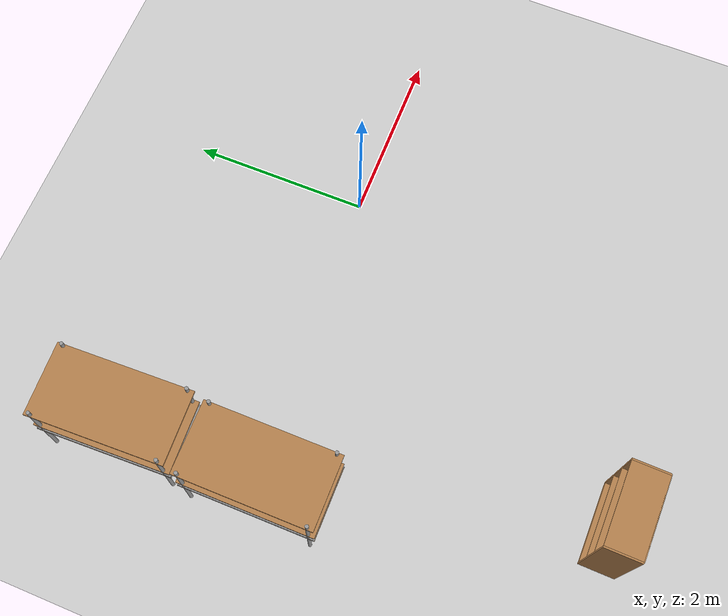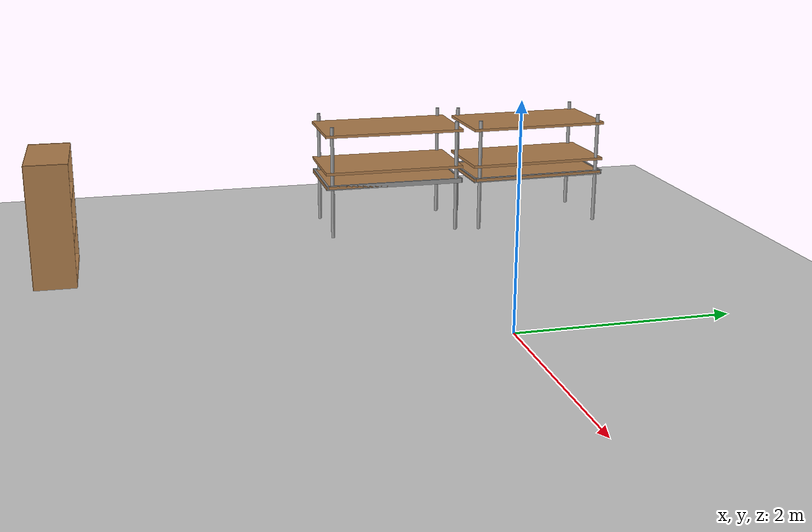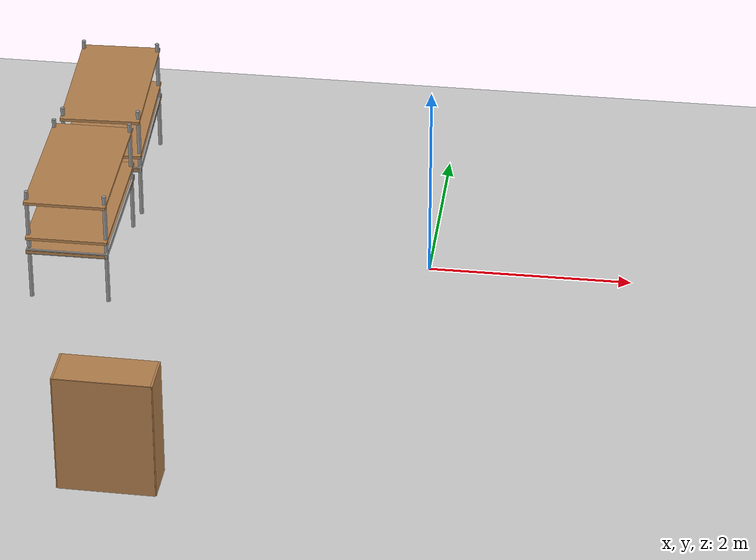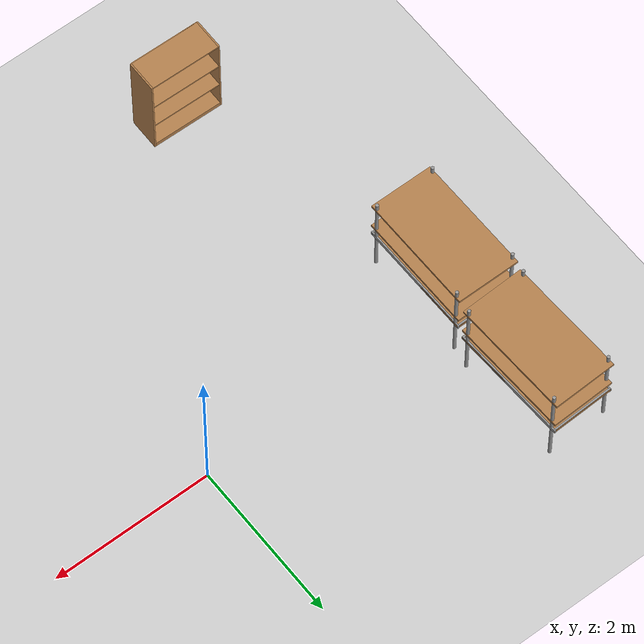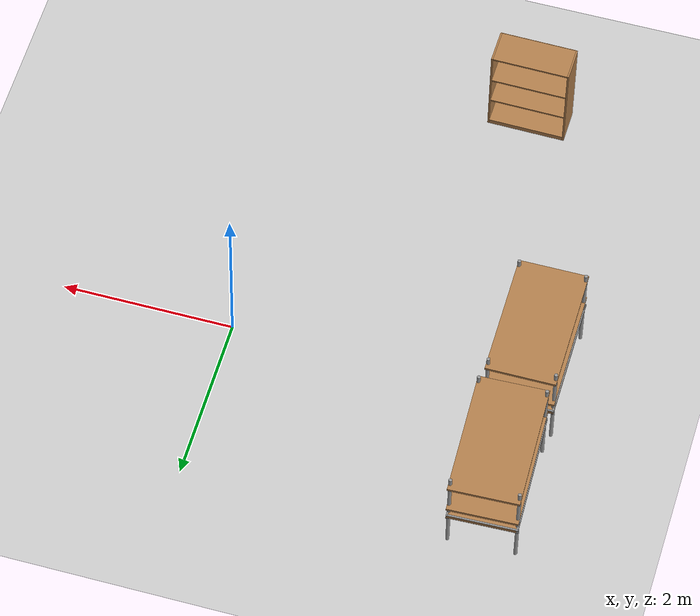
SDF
<sdf version="1.7">
 <world name="default">
  <model name="ground_plane">
   <static>1</static>
   <link name="link">
    <collision name="collision">
     <geometry><plane><normal>0 0 1</normal><size>100 100</size></plane></geometry>
     <surface><friction><ode><mu>100</mu><mu2>50</mu2></ode></friction></surface>
    </collision>
    <visual name="visual">
     <cast_shadows>0</cast_shadows>
     <geometry><plane><normal>0 0 1</normal><size>100 100</size></plane></geometry>
     <material>
      <script><uri>file://media/materials/scripts/gazebo.material</uri><name>Gazebo/Grey</name></script>
     </material>
    </visual>
   </link>
  </model>
  <model name="warehouse_pallet">
   <link name="warehouse_pallet::link">
    <pose>0 0 -0 0 -0 1.57</pose>
    <inertial>
     <inertia>
      <ixx>0.0267042</ixx>
      <ixy>0</ixy>
      <ixz>0</ixz>
      <iyy>0.0937875</iyy>
      <iyz>0</iyz>
      <izz>0.120417</izz>
     </inertia>
     <mass>0.5</mass>
    </inertial>
    <visual name="holding1_visual">
     <pose>0 0.39 0.45 0 -0 0</pose>
     <geometry><box><size>1.5 0.02 0.05</size></box></geometry>
     <material>
      <script><uri>file://media/materials/scripts/gazebo.material</uri><name>Gazebo/Grey</name></script>
      <shader type="pixel"><normal_map>__default__</normal_map></shader>
      <ambient>0.3 0.3 0.3 1</ambient>
      <diffuse>0.7 0.7 0.7 1</diffuse>
      <specular>0.01 0.01 0.01 1</specular>
      <emissive>0 0 0 1</emissive>
     </material>
    </visual>
    <visual name="front_left_leg">
     <pose>0.68 0.38 0.5 0 -0 0</pose>
     <geometry><cylinder><radius>0.02</radius><length>1.2</length></cylinder></geometry>
     <material>
      <script><uri>file://media/materials/scripts/gazebo.material</uri><name>Gazebo/Grey</name></script>
      <shader type="pixel"><normal_map>__default__</normal_map></shader>
      <ambient>0.3 0.3 0.3 1</ambient>
      <diffuse>0.7 0.7 0.7 1</diffuse>
      <specular>0.01 0.01 0.01 1</specular>
      <emissive>0 0 0 1</emissive>
     </material>
    </visual>
    <visual name="front_right_leg">
     <pose>0.68 -0.38 0.5 0 -0 0</pose>
     <geometry><cylinder><radius>0.02</radius><length>1.2</length></cylinder></geometry>
     <material>
      <script><uri>file://media/materials/scripts/gazebo.material</uri><name>Gazebo/Grey</name></script>
      <shader type="pixel"><normal_map>__default__</normal_map></shader>
      <ambient>0.3 0.3 0.3 1</ambient>
      <diffuse>0.7 0.7 0.7 1</diffuse>
      <specular>0.01 0.01 0.01 1</specular>
      <emissive>0 0 0 1</emissive>
     </material>
    </visual>
    <visual name="back_right_leg">
     <pose>-0.68 -0.38 0.5 0 -0 0</pose>
     <geometry><cylinder><radius>0.02</radius><length>1.2</length></cylinder></geometry>
     <material>
      <script><uri>file://media/materials/scripts/gazebo.material</uri><name>Gazebo/Grey</name></script>
      <shader type="pixel"><normal_map>__default__</normal_map></shader>
      <ambient>0.3 0.3 0.3 1</ambient>
      <diffuse>0.7 0.7 0.7 1</diffuse>
      <specular>0.01 0.01 0.01 1</specular>
      <emissive>0 0 0 1</emissive>
     </material>
    </visual>
    <visual name="back_left_leg">
     <pose>-0.68 0.38 0.5 0 -0 0</pose>
     <geometry><cylinder><radius>0.02</radius><length>1.2</length></cylinder></geometry>
     <material>
      <script><uri>file://media/materials/scripts/gazebo.material</uri><name>Gazebo/Grey</name></script>
      <shader type="pixel"><normal_map>__default__</normal_map></shader>
      <ambient>0.3 0.3 0.3 1</ambient>
      <diffuse>0.7 0.7 0.7 1</diffuse>
      <specular>0.01 0.01 0.01 1</specular>
      <emissive>0 0 0 1</emissive>
     </material>
    </visual>
    <visual name="visual1">
     <pose>0 0 0.45 0 -0 0</pose>
     <geometry><box><size>1.5 0.8 0.03</size></box></geometry>
     <material>
      <script><uri>file://media/materials/scripts/gazebo.material</uri><name>Gazebo/Wood</name></script>
      <shader type="pixel"><normal_map>__default__</normal_map></shader>
      <ambient>1 1 1 1</ambient>
      <diffuse>1 1 1 1</diffuse>
      <specular>0.2 0.2 0.2 1</specular>
      <emissive>0 0 0 1</emissive>
     </material>
    </visual>
    <visual name="holding2_visual">
     <pose>0 -0.39 0.45 0 -0 0</pose>
     <geometry><box><size>1.5 0.02 0.05</size></box></geometry>
     <material>
      <script><uri>file://media/materials/scripts/gazebo.material</uri><name>Gazebo/Grey</name></script>
      <shader type="pixel"><normal_map>__default__</normal_map></shader>
      <ambient>0.3 0.3 0.3 1</ambient>
      <diffuse>0.7 0.7 0.7 1</diffuse>
      <specular>0.01 0.01 0.01 1</specular>
      <emissive>0 0 0 1</emissive>
     </material>
    </visual>
    <visual name="holding3_visual">
     <pose>0.735 0 0.45 0 -0 1.57</pose>
     <geometry><box><size>0.8 0.02 0.05</size></box></geometry>
     <material>
      <script><uri>file://media/materials/scripts/gazebo.material</uri><name>Gazebo/Grey</name></script>
      <shader type="pixel"><normal_map>__default__</normal_map></shader>
      <ambient>0.3 0.3 0.3 1</ambient>
      <diffuse>0.7 0.7 0.7 1</diffuse>
      <specular>0.01 0.01 0.01 1</specular>
      <emissive>0 0 0 1</emissive>
     </material>
    </visual>
    <visual name="holding4_visual">
     <pose>-0.735 0 0.45 0 -0 1.57</pose>
     <geometry><box><size>0.8 0.02 0.05</size></box></geometry>
     <material>
      <script><uri>file://media/materials/scripts/gazebo.material</uri><name>Gazebo/Grey</name></script>
      <shader type="pixel"><normal_map>__default__</normal_map></shader>
      <ambient>0.3 0.3 0.3 1</ambient>
      <diffuse>0.7 0.7 0.7 1</diffuse>
      <specular>0.01 0.01 0.01 1</specular>
      <emissive>0 0 0 1</emissive>
     </material>
    </visual>
    <visual name="visual2">
     <pose>0 0 0.6 0 -0 0</pose>
     <geometry><box><size>1.5 0.8 0.03</size></box></geometry>
     <material>
      <script><uri>file://media/materials/scripts/gazebo.material</uri><name>Gazebo/Wood</name></script>
      <shader type="pixel"><normal_map>__default__</normal_map></shader>
      <ambient>1 1 1 1</ambient>
      <diffuse>1 1 1 1</diffuse>
      <specular>0.2 0.2 0.2 1</specular>
      <emissive>0 0 0 1</emissive>
     </material>
    </visual>
    <visual name="visual3">
     <pose>0 0 1 0 -0 0</pose>
     <geometry><box><size>1.5 0.8 0.03</size></box></geometry>
     <material>
      <script><uri>file://media/materials/scripts/gazebo.material</uri><name>Gazebo/Wood</name></script>
      <shader type="pixel"><normal_map>__default__</normal_map></shader>
      <ambient>1 1 1 1</ambient>
      <diffuse>1 1 1 1</diffuse>
      <specular>0.2 0.2 0.2 1</specular>
      <emissive>0 0 0 1</emissive>
     </material>
    </visual>
    <collision name="surface1">
     <pose>0 0 0.45 0 -0 0</pose>
     <geometry><box><size>1.5 0.8 0.03</size></box></geometry>
     <surface>
      <friction>
       <ode><mu>20</mu><mu2>20</mu2><fdir1>0 0 0</fdir1><slip1>0</slip1><slip2>0</slip2></ode>
       <torsional>
        <coefficient>1</coefficient>
        <patch_radius>0</patch_radius>
        <surface_radius>0</surface_radius>
        <use_patch_radius>1</use_patch_radius>
        <ode><slip>0</slip></ode>
       </torsional>
      </friction>
      <bounce><restitution_coefficient>0</restitution_coefficient><threshold>1e+06</threshold></bounce>
      <contact>
       <collide_without_contact>0</collide_without_contact>
       <collide_without_contact_bitmask>1</collide_without_contact_bitmask>
       <collide_bitmask>1</collide_bitmask>
       <ode>
        <soft_cfm>0</soft_cfm>
        <soft_erp>0.2</soft_erp>
        <kp>1e+13</kp>
        <kd>1</kd>
        <max_vel>0.01</max_vel>
        <min_depth>0</min_depth>
       </ode>
       <bullet>
        <split_impulse>1</split_impulse>
        <split_impulse_penetration_threshold>-0.01</split_impulse_penetration_threshold>
        <soft_cfm>0</soft_cfm>
        <soft_erp>0.2</soft_erp>
        <kp>1e+13</kp>
        <kd>1</kd>
       </bullet>
      </contact>
     </surface>
    </collision>
    <collision name="holding1_collision">
     <pose>0 0.39 0.45 0 -0 0</pose>
     <geometry><box><size>1.5 0.02 0.05</size></box></geometry>
     <surface>
      <friction>
       <ode><mu>1e+09</mu><mu2>1e+09</mu2><fdir1>0 0 0</fdir1><slip1>0</slip1><slip2>0</slip2></ode>
       <torsional>
        <coefficient>1</coefficient>
        <patch_radius>0</patch_radius>
        <surface_radius>0</surface_radius>
        <use_patch_radius>1</use_patch_radius>
        <ode><slip>0</slip></ode>
       </torsional>
      </friction>
      <bounce><restitution_coefficient>0</restitution_coefficient><threshold>1e+06</threshold></bounce>
      <contact>
       <collide_without_contact>0</collide_without_contact>
       <collide_without_contact_bitmask>1</collide_without_contact_bitmask>
       <collide_bitmask>1</collide_bitmask>
       <ode>
        <soft_cfm>0</soft_cfm>
        <soft_erp>0.2</soft_erp>
        <kp>1e+13</kp>
        <kd>1</kd>
        <max_vel>0.01</max_vel>
        <min_depth>0</min_depth>
       </ode>
       <bullet>
        <split_impulse>1</split_impulse>
        <split_impulse_penetration_threshold>-0.01</split_impulse_penetration_threshold>
        <soft_cfm>0</soft_cfm>
        <soft_erp>0.2</soft_erp>
        <kp>1e+13</kp>
        <kd>1</kd>
       </bullet>
      </contact>
     </surface>
    </collision>
    <collision name="holding2_collision">
     <pose>0 -0.39 0.45 0 -0 0</pose>
     <geometry><box><size>1.5 0.02 0.05</size></box></geometry>
     <surface>
      <friction>
       <ode><mu>1e+09</mu><mu2>1e+09</mu2><fdir1>0 0 0</fdir1><slip1>0</slip1><slip2>0</slip2></ode>
       <torsional>
        <coefficient>1</coefficient>
        <patch_radius>0</patch_radius>
        <surface_radius>0</surface_radius>
        <use_patch_radius>1</use_patch_radius>
        <ode><slip>0</slip></ode>
       </torsional>
      </friction>
      <bounce><restitution_coefficient>0</restitution_coefficient><threshold>1e+06</threshold></bounce>
      <contact>
       <collide_without_contact>0</collide_without_contact>
       <collide_without_contact_bitmask>1</collide_without_contact_bitmask>
       <collide_bitmask>1</collide_bitmask>
       <ode>
        <soft_cfm>0</soft_cfm>
        <soft_erp>0.2</soft_erp>
        <kp>1e+13</kp>
        <kd>1</kd>
        <max_vel>0.01</max_vel>
        <min_depth>0</min_depth>
       </ode>
       <bullet>
        <split_impulse>1</split_impulse>
        <split_impulse_penetration_threshold>-0.01</split_impulse_penetration_threshold>
        <soft_cfm>0</soft_cfm>
        <soft_erp>0.2</soft_erp>
        <kp>1e+13</kp>
        <kd>1</kd>
       </bullet>
      </contact>
     </surface>
    </collision>
    <collision name="holding3_collision">
     <pose>0.735 0 0.45 0 -0 1.57</pose>
     <geometry><box><size>0.8 0.02 0.05</size></box></geometry>
     <surface>
      <friction>
       <ode><mu>1e+09</mu><mu2>1e+09</mu2><fdir1>0 0 0</fdir1><slip1>0</slip1><slip2>0</slip2></ode>
       <torsional>
        <coefficient>1</coefficient>
        <patch_radius>0</patch_radius>
        <surface_radius>0</surface_radius>
        <use_patch_radius>1</use_patch_radius>
        <ode><slip>0</slip></ode>
       </torsional>
      </friction>
      <bounce><restitution_coefficient>0</restitution_coefficient><threshold>1e+06</threshold></bounce>
      <contact>
       <collide_without_contact>0</collide_without_contact>
       <collide_without_contact_bitmask>1</collide_without_contact_bitmask>
       <collide_bitmask>1</collide_bitmask>
       <ode>
        <soft_cfm>0</soft_cfm>
        <soft_erp>0.2</soft_erp>
        <kp>1e+13</kp>
        <kd>1</kd>
        <max_vel>0.01</max_vel>
        <min_depth>0</min_depth>
       </ode>
       <bullet>
        <split_impulse>1</split_impulse>
        <split_impulse_penetration_threshold>-0.01</split_impulse_penetration_threshold>
        <soft_cfm>0</soft_cfm>
        <soft_erp>0.2</soft_erp>
        <kp>1e+13</kp>
        <kd>1</kd>
       </bullet>
      </contact>
     </surface>
    </collision>
    <collision name="holding4_collision">
     <pose>-0.735 0 0.45 0 -0 1.57</pose>
     <geometry><box><size>0.8 0.02 0.05</size></box></geometry>
     <surface>
      <friction>
       <ode><mu>1e+09</mu><mu2>1e+09</mu2><fdir1>0 0 0</fdir1><slip1>0</slip1><slip2>0</slip2></ode>
       <torsional>
        <coefficient>1</coefficient>
        <patch_radius>0</patch_radius>
        <surface_radius>0</surface_radius>
        <use_patch_radius>1</use_patch_radius>
        <ode><slip>0</slip></ode>
       </torsional>
      </friction>
      <bounce><restitution_coefficient>0</restitution_coefficient><threshold>1e+06</threshold></bounce>
      <contact>
       <collide_without_contact>0</collide_without_contact>
       <collide_without_contact_bitmask>1</collide_without_contact_bitmask>
       <collide_bitmask>1</collide_bitmask>
       <ode>
        <soft_cfm>0</soft_cfm>
        <soft_erp>0.2</soft_erp>
        <kp>1e+13</kp>
        <kd>1</kd>
        <max_vel>0.01</max_vel>
        <min_depth>0</min_depth>
       </ode>
       <bullet>
        <split_impulse>1</split_impulse>
        <split_impulse_penetration_threshold>-0.01</split_impulse_penetration_threshold>
        <soft_cfm>0</soft_cfm>
        <soft_erp>0.2</soft_erp>
        <kp>1e+13</kp>
        <kd>1</kd>
       </bullet>
      </contact>
     </surface>
    </collision>
    <collision name="surface3">
     <pose>0 0 1 0 -0 0</pose>
     <geometry><box><size>1.5 0.8 0.03</size></box></geometry>
     <surface>
      <friction>
       <ode><mu>2.5</mu><mu2>2.5</mu2><fdir1>0 0 0</fdir1><slip1>0</slip1><slip2>0</slip2></ode>
       <torsional>
        <coefficient>1</coefficient>
        <patch_radius>0</patch_radius>
        <surface_radius>0</surface_radius>
        <use_patch_radius>1</use_patch_radius>
        <ode><slip>0</slip></ode>
       </torsional>
      </friction>
      <bounce><restitution_coefficient>0</restitution_coefficient><threshold>1e+06</threshold></bounce>
      <contact>
       <collide_without_contact>0</collide_without_contact>
       <collide_without_contact_bitmask>1</collide_without_contact_bitmask>
       <collide_bitmask>1</collide_bitmask>
       <ode>
        <soft_cfm>0</soft_cfm>
        <soft_erp>0.2</soft_erp>
        <kp>1e+13</kp>
        <kd>1</kd>
        <max_vel>0.01</max_vel>
        <min_depth>0</min_depth>
       </ode>
       <bullet>
        <split_impulse>1</split_impulse>
        <split_impulse_penetration_threshold>-0.01</split_impulse_penetration_threshold>
        <soft_cfm>0</soft_cfm>
        <soft_erp>0.2</soft_erp>
        <kp>1e+13</kp>
        <kd>1</kd>
       </bullet>
      </contact>
     </surface>
    </collision>
    <collision name="surface2">
     <pose>0 0 0.6 0 -0 0</pose>
     <geometry><box><size>1.5 0.8 0.03</size></box></geometry>
     <surface>
      <friction>
       <ode><mu>2.5</mu><mu2>2.5</mu2><fdir1>0 0 0</fdir1><slip1>0</slip1><slip2>0</slip2></ode>
       <torsional>
        <coefficient>1</coefficient>
        <patch_radius>0</patch_radius>
        <surface_radius>0</surface_radius>
        <use_patch_radius>1</use_patch_radius>
        <ode><slip>0</slip></ode>
       </torsional>
      </friction>
      <bounce><restitution_coefficient>0</restitution_coefficient><threshold>1e+06</threshold></bounce>
      <contact>
       <collide_without_contact>0</collide_without_contact>
       <collide_without_contact_bitmask>1</collide_without_contact_bitmask>
       <collide_bitmask>1</collide_bitmask>
       <ode>
        <soft_cfm>0</soft_cfm>
        <soft_erp>0.2</soft_erp>
        <kp>1e+13</kp>
        <kd>1</kd>
        <max_vel>0.01</max_vel>
        <min_depth>0</min_depth>
       </ode>
       <bullet>
        <split_impulse>1</split_impulse>
        <split_impulse_penetration_threshold>-0.01</split_impulse_penetration_threshold>
        <soft_cfm>0</soft_cfm>
        <soft_erp>0.2</soft_erp>
        <kp>1e+13</kp>
        <kd>1</kd>
       </bullet>
      </contact>
     </surface>
    </collision>
    <collision name="front_right_leg">
     <pose>0.68 -0.38 0.5 0 -0 0</pose>
     <geometry><cylinder><radius>0.02</radius><length>1</length></cylinder></geometry>
     <surface>
      <friction>
       <ode><mu>1</mu><mu2>1.2</mu2><fdir1>0 0 0</fdir1><slip1>0</slip1><slip2>0</slip2></ode>
       <torsional>
        <coefficient>1</coefficient>
        <patch_radius>0</patch_radius>
        <surface_radius>0</surface_radius>
        <use_patch_radius>1</use_patch_radius>
        <ode><slip>0</slip></ode>
       </torsional>
      </friction>
      <bounce><restitution_coefficient>0</restitution_coefficient><threshold>1e+06</threshold></bounce>
      <contact>
       <collide_without_contact>0</collide_without_contact>
       <collide_without_contact_bitmask>1</collide_without_contact_bitmask>
       <collide_bitmask>1</collide_bitmask>
       <ode>
        <soft_cfm>0</soft_cfm>
        <soft_erp>0.2</soft_erp>
        <kp>1e+13</kp>
        <kd>1</kd>
        <max_vel>0.01</max_vel>
        <min_depth>0</min_depth>
       </ode>
       <bullet>
        <split_impulse>1</split_impulse>
        <split_impulse_penetration_threshold>-0.01</split_impulse_penetration_threshold>
        <soft_cfm>0</soft_cfm>
        <soft_erp>0.2</soft_erp>
        <kp>1e+13</kp>
        <kd>1</kd>
       </bullet>
      </contact>
     </surface>
    </collision>
    <collision name="back_right_leg">
     <pose>-0.68 -0.38 0.5 0 -0 0</pose>
     <geometry><cylinder><radius>0.02</radius><length>1.2</length></cylinder></geometry>
     <surface>
      <friction>
       <ode><mu>1</mu><mu2>1</mu2><fdir1>0 0 0</fdir1><slip1>0</slip1><slip2>0</slip2></ode>
       <torsional>
        <coefficient>1</coefficient>
        <patch_radius>0</patch_radius>
        <surface_radius>0</surface_radius>
        <use_patch_radius>1</use_patch_radius>
        <ode><slip>0</slip></ode>
       </torsional>
      </friction>
      <bounce><restitution_coefficient>0</restitution_coefficient><threshold>1e+06</threshold></bounce>
      <contact>
       <collide_without_contact>0</collide_without_contact>
       <collide_without_contact_bitmask>1</collide_without_contact_bitmask>
       <collide_bitmask>1</collide_bitmask>
       <ode>
        <soft_cfm>0</soft_cfm>
        <soft_erp>0.2</soft_erp>
        <kp>1e+13</kp>
        <kd>1</kd>
        <max_vel>0.01</max_vel>
        <min_depth>0</min_depth>
       </ode>
       <bullet>
        <split_impulse>1</split_impulse>
        <split_impulse_penetration_threshold>-0.01</split_impulse_penetration_threshold>
        <soft_cfm>0</soft_cfm>
        <soft_erp>0.2</soft_erp>
        <kp>1e+13</kp>
        <kd>1</kd>
       </bullet>
      </contact>
     </surface>
    </collision>
    <collision name="front_left_leg">
     <pose>0.68 0.38 0.5 0 -0 0</pose>
     <geometry><cylinder><radius>0.02</radius><length>1.2</length></cylinder></geometry>
     <surface>
      <friction>
       <ode><mu>1</mu><mu2>1</mu2><fdir1>0 0 0</fdir1><slip1>0</slip1><slip2>0</slip2></ode>
       <torsional>
        <coefficient>1</coefficient>
        <patch_radius>0</patch_radius>
        <surface_radius>0</surface_radius>
        <use_patch_radius>1</use_patch_radius>
        <ode><slip>0</slip></ode>
       </torsional>
      </friction>
      <bounce><restitution_coefficient>0</restitution_coefficient><threshold>1e+06</threshold></bounce>
      <contact>
       <collide_without_contact>0</collide_without_contact>
       <collide_without_contact_bitmask>1</collide_without_contact_bitmask>
       <collide_bitmask>1</collide_bitmask>
       <ode>
        <soft_cfm>0</soft_cfm>
        <soft_erp>0.2</soft_erp>
        <kp>1e+13</kp>
        <kd>1</kd>
        <max_vel>0.01</max_vel>
        <min_depth>0</min_depth>
       </ode>
       <bullet>
        <split_impulse>1</split_impulse>
        <split_impulse_penetration_threshold>-0.01</split_impulse_penetration_threshold>
        <soft_cfm>0</soft_cfm>
        <soft_erp>0.2</soft_erp>
        <kp>1e+13</kp>
        <kd>1</kd>
       </bullet>
      </contact>
     </surface>
    </collision>
    <collision name="back_left_leg">
     <pose>-0.68 0.38 0.5 0 -0 0</pose>
     <geometry><cylinder><radius>0.02</radius><length>1.2</length></cylinder></geometry>
     <surface>
      <friction>
       <ode><mu>1</mu><mu2>1</mu2><fdir1>0 0 0</fdir1><slip1>0</slip1><slip2>0</slip2></ode>
       <torsional>
        <coefficient>1</coefficient>
        <patch_radius>0</patch_radius>
        <surface_radius>0</surface_radius>
        <use_patch_radius>1</use_patch_radius>
        <ode><slip>0</slip></ode>
       </torsional>
      </friction>
      <bounce><restitution_coefficient>0</restitution_coefficient><threshold>1e+06</threshold></bounce>
      <contact>
       <collide_without_contact>0</collide_without_contact>
       <collide_without_contact_bitmask>1</collide_without_contact_bitmask>
       <collide_bitmask>1</collide_bitmask>
       <ode>
        <soft_cfm>0</soft_cfm>
        <soft_erp>0.2</soft_erp>
        <kp>1e+13</kp>
        <kd>1</kd>
        <max_vel>0.01</max_vel>
        <min_depth>0</min_depth>
       </ode>
       <bullet>
        <split_impulse>1</split_impulse>
        <split_impulse_penetration_threshold>-0.01</split_impulse_penetration_threshold>
        <soft_cfm>0</soft_cfm>
        <soft_erp>0.2</soft_erp>
        <kp>1e+13</kp>
        <kd>1</kd>
       </bullet>
      </contact>
     </surface>
    </collision>
   </link>
   <static>0</static>
   <pose>-3.42613 -0.286099 0.099991 -7e-06 1.4e-05 0.003434</pose>
  </model>
  <model name="warehouse_pallet_clone">
   <link name="warehouse_pallet::link">
    <pose>0 0 -0 0 -0 1.57</pose>
    <inertial>
     <inertia>
      <ixx>0.0267042</ixx>
      <ixy>0</ixy>
      <ixz>0</ixz>
      <iyy>0.0937875</iyy>
      <iyz>0</iyz>
      <izz>0.120417</izz>
     </inertia>
     <mass>0.5</mass>
    </inertial>
    <visual name="holding1_visual">
     <pose>0 0.39 0.45 0 -0 0</pose>
     <geometry><box><size>1.5 0.02 0.05</size></box></geometry>
     <material>
      <script><uri>file://media/materials/scripts/gazebo.material</uri><name>Gazebo/Grey</name></script>
      <shader type="pixel"><normal_map>__default__</normal_map></shader>
      <ambient>0.3 0.3 0.3 1</ambient>
      <diffuse>0.7 0.7 0.7 1</diffuse>
      <specular>0.01 0.01 0.01 1</specular>
      <emissive>0 0 0 1</emissive>
     </material>
    </visual>
    <visual name="front_left_leg">
     <pose>0.68 0.38 0.5 0 -0 0</pose>
     <geometry><cylinder><radius>0.02</radius><length>1.2</length></cylinder></geometry>
     <material>
      <script><uri>file://media/materials/scripts/gazebo.material</uri><name>Gazebo/Grey</name></script>
      <shader type="pixel"><normal_map>__default__</normal_map></shader>
      <ambient>0.3 0.3 0.3 1</ambient>
      <diffuse>0.7 0.7 0.7 1</diffuse>
      <specular>0.01 0.01 0.01 1</specular>
      <emissive>0 0 0 1</emissive>
     </material>
    </visual>
    <visual name="front_right_leg">
     <pose>0.68 -0.38 0.5 0 -0 0</pose>
     <geometry><cylinder><radius>0.02</radius><length>1.2</length></cylinder></geometry>
     <material>
      <script><uri>file://media/materials/scripts/gazebo.material</uri><name>Gazebo/Grey</name></script>
      <shader type="pixel"><normal_map>__default__</normal_map></shader>
      <ambient>0.3 0.3 0.3 1</ambient>
      <diffuse>0.7 0.7 0.7 1</diffuse>
      <specular>0.01 0.01 0.01 1</specular>
      <emissive>0 0 0 1</emissive>
     </material>
    </visual>
    <visual name="back_right_leg">
     <pose>-0.68 -0.38 0.5 0 -0 0</pose>
     <geometry><cylinder><radius>0.02</radius><length>1.2</length></cylinder></geometry>
     <material>
      <script><uri>file://media/materials/scripts/gazebo.material</uri><name>Gazebo/Grey</name></script>
      <shader type="pixel"><normal_map>__default__</normal_map></shader>
      <ambient>0.3 0.3 0.3 1</ambient>
      <diffuse>0.7 0.7 0.7 1</diffuse>
      <specular>0.01 0.01 0.01 1</specular>
      <emissive>0 0 0 1</emissive>
     </material>
    </visual>
    <visual name="back_left_leg">
     <pose>-0.68 0.38 0.5 0 -0 0</pose>
     <geometry><cylinder><radius>0.02</radius><length>1.2</length></cylinder></geometry>
     <material>
      <script><uri>file://media/materials/scripts/gazebo.material</uri><name>Gazebo/Grey</name></script>
      <shader type="pixel"><normal_map>__default__</normal_map></shader>
      <ambient>0.3 0.3 0.3 1</ambient>
      <diffuse>0.7 0.7 0.7 1</diffuse>
      <specular>0.01 0.01 0.01 1</specular>
      <emissive>0 0 0 1</emissive>
     </material>
    </visual>
    <visual name="visual1">
     <pose>0 0 0.45 0 -0 0</pose>
     <geometry><box><size>1.5 0.8 0.03</size></box></geometry>
     <material>
      <script><uri>file://media/materials/scripts/gazebo.material</uri><name>Gazebo/Wood</name></script>
      <shader type="pixel"><normal_map>__default__</normal_map></shader>
      <ambient>1 1 1 1</ambient>
      <diffuse>1 1 1 1</diffuse>
      <specular>0.2 0.2 0.2 1</specular>
      <emissive>0 0 0 1</emissive>
     </material>
    </visual>
    <visual name="holding2_visual">
     <pose>0 -0.39 0.45 0 -0 0</pose>
     <geometry><box><size>1.5 0.02 0.05</size></box></geometry>
     <material>
      <script><uri>file://media/materials/scripts/gazebo.material</uri><name>Gazebo/Grey</name></script>
      <shader type="pixel"><normal_map>__default__</normal_map></shader>
      <ambient>0.3 0.3 0.3 1</ambient>
      <diffuse>0.7 0.7 0.7 1</diffuse>
      <specular>0.01 0.01 0.01 1</specular>
      <emissive>0 0 0 1</emissive>
     </material>
    </visual>
    <visual name="holding3_visual">
     <pose>0.735 0 0.45 0 -0 1.57</pose>
     <geometry><box><size>0.8 0.02 0.05</size></box></geometry>
     <material>
      <script><uri>file://media/materials/scripts/gazebo.material</uri><name>Gazebo/Grey</name></script>
      <shader type="pixel"><normal_map>__default__</normal_map></shader>
      <ambient>0.3 0.3 0.3 1</ambient>
      <diffuse>0.7 0.7 0.7 1</diffuse>
      <specular>0.01 0.01 0.01 1</specular>
      <emissive>0 0 0 1</emissive>
     </material>
    </visual>
    <visual name="holding4_visual">
     <pose>-0.735 0 0.45 0 -0 1.57</pose>
     <geometry><box><size>0.8 0.02 0.05</size></box></geometry>
     <material>
      <script><uri>file://media/materials/scripts/gazebo.material</uri><name>Gazebo/Grey</name></script>
      <shader type="pixel"><normal_map>__default__</normal_map></shader>
      <ambient>0.3 0.3 0.3 1</ambient>
      <diffuse>0.7 0.7 0.7 1</diffuse>
      <specular>0.01 0.01 0.01 1</specular>
      <emissive>0 0 0 1</emissive>
     </material>
    </visual>
    <visual name="visual2">
     <pose>0 0 0.6 0 -0 0</pose>
     <geometry><box><size>1.5 0.8 0.03</size></box></geometry>
     <material>
      <script><uri>file://media/materials/scripts/gazebo.material</uri><name>Gazebo/Wood</name></script>
      <shader type="pixel"><normal_map>__default__</normal_map></shader>
      <ambient>1 1 1 1</ambient>
      <diffuse>1 1 1 1</diffuse>
      <specular>0.2 0.2 0.2 1</specular>
      <emissive>0 0 0 1</emissive>
     </material>
    </visual>
    <visual name="visual3">
     <pose>0 0 1 0 -0 0</pose>
     <geometry><box><size>1.5 0.8 0.03</size></box></geometry>
     <material>
      <script><uri>file://media/materials/scripts/gazebo.material</uri><name>Gazebo/Wood</name></script>
      <shader type="pixel"><normal_map>__default__</normal_map></shader>
      <ambient>1 1 1 1</ambient>
      <diffuse>1 1 1 1</diffuse>
      <specular>0.2 0.2 0.2 1</specular>
      <emissive>0 0 0 1</emissive>
     </material>
    </visual>
    <collision name="surface1">
     <pose>0 0 0.45 0 -0 0</pose>
     <geometry><box><size>1.5 0.8 0.03</size></box></geometry>
     <surface>
      <friction>
       <ode><mu>20</mu><mu2>20</mu2><fdir1>0 0 0</fdir1><slip1>0</slip1><slip2>0</slip2></ode>
       <torsional>
        <coefficient>1</coefficient>
        <patch_radius>0</patch_radius>
        <surface_radius>0</surface_radius>
        <use_patch_radius>1</use_patch_radius>
        <ode><slip>0</slip></ode>
       </torsional>
      </friction>
      <bounce><restitution_coefficient>0</restitution_coefficient><threshold>1e+06</threshold></bounce>
      <contact>
       <collide_without_contact>0</collide_without_contact>
       <collide_without_contact_bitmask>1</collide_without_contact_bitmask>
       <collide_bitmask>1</collide_bitmask>
       <ode>
        <soft_cfm>0</soft_cfm>
        <soft_erp>0.2</soft_erp>
        <kp>1e+13</kp>
        <kd>1</kd>
        <max_vel>0.01</max_vel>
        <min_depth>0</min_depth>
       </ode>
       <bullet>
        <split_impulse>1</split_impulse>
        <split_impulse_penetration_threshold>-0.01</split_impulse_penetration_threshold>
        <soft_cfm>0</soft_cfm>
        <soft_erp>0.2</soft_erp>
        <kp>1e+13</kp>
        <kd>1</kd>
       </bullet>
      </contact>
     </surface>
    </collision>
    <collision name="holding1_collision">
     <pose>0 0.39 0.45 0 -0 0</pose>
     <geometry><box><size>1.5 0.02 0.05</size></box></geometry>
     <surface>
      <friction>
       <ode><mu>1e+09</mu><mu2>1e+09</mu2><fdir1>0 0 0</fdir1><slip1>0</slip1><slip2>0</slip2></ode>
       <torsional>
        <coefficient>1</coefficient>
        <patch_radius>0</patch_radius>
        <surface_radius>0</surface_radius>
        <use_patch_radius>1</use_patch_radius>
        <ode><slip>0</slip></ode>
       </torsional>
      </friction>
      <bounce><restitution_coefficient>0</restitution_coefficient><threshold>1e+06</threshold></bounce>
      <contact>
       <collide_without_contact>0</collide_without_contact>
       <collide_without_contact_bitmask>1</collide_without_contact_bitmask>
       <collide_bitmask>1</collide_bitmask>
       <ode>
        <soft_cfm>0</soft_cfm>
        <soft_erp>0.2</soft_erp>
        <kp>1e+13</kp>
        <kd>1</kd>
        <max_vel>0.01</max_vel>
        <min_depth>0</min_depth>
       </ode>
       <bullet>
        <split_impulse>1</split_impulse>
        <split_impulse_penetration_threshold>-0.01</split_impulse_penetration_threshold>
        <soft_cfm>0</soft_cfm>
        <soft_erp>0.2</soft_erp>
        <kp>1e+13</kp>
        <kd>1</kd>
       </bullet>
      </contact>
     </surface>
    </collision>
    <collision name="holding2_collision">
     <pose>0 -0.39 0.45 0 -0 0</pose>
     <geometry><box><size>1.5 0.02 0.05</size></box></geometry>
     <surface>
      <friction>
       <ode><mu>1e+09</mu><mu2>1e+09</mu2><fdir1>0 0 0</fdir1><slip1>0</slip1><slip2>0</slip2></ode>
       <torsional>
        <coefficient>1</coefficient>
        <patch_radius>0</patch_radius>
        <surface_radius>0</surface_radius>
        <use_patch_radius>1</use_patch_radius>
        <ode><slip>0</slip></ode>
       </torsional>
      </friction>
      <bounce><restitution_coefficient>0</restitution_coefficient><threshold>1e+06</threshold></bounce>
      <contact>
       <collide_without_contact>0</collide_without_contact>
       <collide_without_contact_bitmask>1</collide_without_contact_bitmask>
       <collide_bitmask>1</collide_bitmask>
       <ode>
        <soft_cfm>0</soft_cfm>
        <soft_erp>0.2</soft_erp>
        <kp>1e+13</kp>
        <kd>1</kd>
        <max_vel>0.01</max_vel>
        <min_depth>0</min_depth>
       </ode>
       <bullet>
        <split_impulse>1</split_impulse>
        <split_impulse_penetration_threshold>-0.01</split_impulse_penetration_threshold>
        <soft_cfm>0</soft_cfm>
        <soft_erp>0.2</soft_erp>
        <kp>1e+13</kp>
        <kd>1</kd>
       </bullet>
      </contact>
     </surface>
    </collision>
    <collision name="holding3_collision">
     <pose>0.735 0 0.45 0 -0 1.57</pose>
     <geometry><box><size>0.8 0.02 0.05</size></box></geometry>
     <surface>
      <friction>
       <ode><mu>1e+09</mu><mu2>1e+09</mu2><fdir1>0 0 0</fdir1><slip1>0</slip1><slip2>0</slip2></ode>
       <torsional>
        <coefficient>1</coefficient>
        <patch_radius>0</patch_radius>
        <surface_radius>0</surface_radius>
        <use_patch_radius>1</use_patch_radius>
        <ode><slip>0</slip></ode>
       </torsional>
      </friction>
      <bounce><restitution_coefficient>0</restitution_coefficient><threshold>1e+06</threshold></bounce>
      <contact>
       <collide_without_contact>0</collide_without_contact>
       <collide_without_contact_bitmask>1</collide_without_contact_bitmask>
       <collide_bitmask>1</collide_bitmask>
       <ode>
        <soft_cfm>0</soft_cfm>
        <soft_erp>0.2</soft_erp>
        <kp>1e+13</kp>
        <kd>1</kd>
        <max_vel>0.01</max_vel>
        <min_depth>0</min_depth>
       </ode>
       <bullet>
        <split_impulse>1</split_impulse>
        <split_impulse_penetration_threshold>-0.01</split_impulse_penetration_threshold>
        <soft_cfm>0</soft_cfm>
        <soft_erp>0.2</soft_erp>
        <kp>1e+13</kp>
        <kd>1</kd>
       </bullet>
      </contact>
     </surface>
    </collision>
    <collision name="holding4_collision">
     <pose>-0.735 0 0.45 0 -0 1.57</pose>
     <geometry><box><size>0.8 0.02 0.05</size></box></geometry>
     <surface>
      <friction>
       <ode><mu>1e+09</mu><mu2>1e+09</mu2><fdir1>0 0 0</fdir1><slip1>0</slip1><slip2>0</slip2></ode>
       <torsional>
        <coefficient>1</coefficient>
        <patch_radius>0</patch_radius>
        <surface_radius>0</surface_radius>
        <use_patch_radius>1</use_patch_radius>
        <ode><slip>0</slip></ode>
       </torsional>
      </friction>
      <bounce><restitution_coefficient>0</restitution_coefficient><threshold>1e+06</threshold></bounce>
      <contact>
       <collide_without_contact>0</collide_without_contact>
       <collide_without_contact_bitmask>1</collide_without_contact_bitmask>
       <collide_bitmask>1</collide_bitmask>
       <ode>
        <soft_cfm>0</soft_cfm>
        <soft_erp>0.2</soft_erp>
        <kp>1e+13</kp>
        <kd>1</kd>
        <max_vel>0.01</max_vel>
        <min_depth>0</min_depth>
       </ode>
       <bullet>
        <split_impulse>1</split_impulse>
        <split_impulse_penetration_threshold>-0.01</split_impulse_penetration_threshold>
        <soft_cfm>0</soft_cfm>
        <soft_erp>0.2</soft_erp>
        <kp>1e+13</kp>
        <kd>1</kd>
       </bullet>
      </contact>
     </surface>
    </collision>
    <collision name="surface3">
     <pose>0 0 1 0 -0 0</pose>
     <geometry><box><size>1.5 0.8 0.03</size></box></geometry>
     <surface>
      <friction>
       <ode><mu>2.5</mu><mu2>2.5</mu2><fdir1>0 0 0</fdir1><slip1>0</slip1><slip2>0</slip2></ode>
       <torsional>
        <coefficient>1</coefficient>
        <patch_radius>0</patch_radius>
        <surface_radius>0</surface_radius>
        <use_patch_radius>1</use_patch_radius>
        <ode><slip>0</slip></ode>
       </torsional>
      </friction>
      <bounce><restitution_coefficient>0</restitution_coefficient><threshold>1e+06</threshold></bounce>
      <contact>
       <collide_without_contact>0</collide_without_contact>
       <collide_without_contact_bitmask>1</collide_without_contact_bitmask>
       <collide_bitmask>1</collide_bitmask>
       <ode>
        <soft_cfm>0</soft_cfm>
        <soft_erp>0.2</soft_erp>
        <kp>1e+13</kp>
        <kd>1</kd>
        <max_vel>0.01</max_vel>
        <min_depth>0</min_depth>
       </ode>
       <bullet>
        <split_impulse>1</split_impulse>
        <split_impulse_penetration_threshold>-0.01</split_impulse_penetration_threshold>
        <soft_cfm>0</soft_cfm>
        <soft_erp>0.2</soft_erp>
        <kp>1e+13</kp>
        <kd>1</kd>
       </bullet>
      </contact>
     </surface>
    </collision>
    <collision name="surface2">
     <pose>0 0 0.6 0 -0 0</pose>
     <geometry><box><size>1.5 0.8 0.03</size></box></geometry>
     <surface>
      <friction>
       <ode><mu>2.5</mu><mu2>2.5</mu2><fdir1>0 0 0</fdir1><slip1>0</slip1><slip2>0</slip2></ode>
       <torsional>
        <coefficient>1</coefficient>
        <patch_radius>0</patch_radius>
        <surface_radius>0</surface_radius>
        <use_patch_radius>1</use_patch_radius>
        <ode><slip>0</slip></ode>
       </torsional>
      </friction>
      <bounce><restitution_coefficient>0</restitution_coefficient><threshold>1e+06</threshold></bounce>
      <contact>
       <collide_without_contact>0</collide_without_contact>
       <collide_without_contact_bitmask>1</collide_without_contact_bitmask>
       <collide_bitmask>1</collide_bitmask>
       <ode>
        <soft_cfm>0</soft_cfm>
        <soft_erp>0.2</soft_erp>
        <kp>1e+13</kp>
        <kd>1</kd>
        <max_vel>0.01</max_vel>
        <min_depth>0</min_depth>
       </ode>
       <bullet>
        <split_impulse>1</split_impulse>
        <split_impulse_penetration_threshold>-0.01</split_impulse_penetration_threshold>
        <soft_cfm>0</soft_cfm>
        <soft_erp>0.2</soft_erp>
        <kp>1e+13</kp>
        <kd>1</kd>
       </bullet>
      </contact>
     </surface>
    </collision>
    <collision name="front_right_leg">
     <pose>0.68 -0.38 0.5 0 -0 0</pose>
     <geometry><cylinder><radius>0.02</radius><length>1</length></cylinder></geometry>
     <surface>
      <friction>
       <ode><mu>1</mu><mu2>1.2</mu2><fdir1>0 0 0</fdir1><slip1>0</slip1><slip2>0</slip2></ode>
       <torsional>
        <coefficient>1</coefficient>
        <patch_radius>0</patch_radius>
        <surface_radius>0</surface_radius>
        <use_patch_radius>1</use_patch_radius>
        <ode><slip>0</slip></ode>
       </torsional>
      </friction>
      <bounce><restitution_coefficient>0</restitution_coefficient><threshold>1e+06</threshold></bounce>
      <contact>
       <collide_without_contact>0</collide_without_contact>
       <collide_without_contact_bitmask>1</collide_without_contact_bitmask>
       <collide_bitmask>1</collide_bitmask>
       <ode>
        <soft_cfm>0</soft_cfm>
        <soft_erp>0.2</soft_erp>
        <kp>1e+13</kp>
        <kd>1</kd>
        <max_vel>0.01</max_vel>
        <min_depth>0</min_depth>
       </ode>
       <bullet>
        <split_impulse>1</split_impulse>
        <split_impulse_penetration_threshold>-0.01</split_impulse_penetration_threshold>
        <soft_cfm>0</soft_cfm>
        <soft_erp>0.2</soft_erp>
        <kp>1e+13</kp>
        <kd>1</kd>
       </bullet>
      </contact>
     </surface>
    </collision>
    <collision name="back_right_leg">
     <pose>-0.68 -0.38 0.5 0 -0 0</pose>
     <geometry><cylinder><radius>0.02</radius><length>1.2</length></cylinder></geometry>
     <surface>
      <friction>
       <ode><mu>1</mu><mu2>1</mu2><fdir1>0 0 0</fdir1><slip1>0</slip1><slip2>0</slip2></ode>
       <torsional>
        <coefficient>1</coefficient>
        <patch_radius>0</patch_radius>
        <surface_radius>0</surface_radius>
        <use_patch_radius>1</use_patch_radius>
        <ode><slip>0</slip></ode>
       </torsional>
      </friction>
      <bounce><restitution_coefficient>0</restitution_coefficient><threshold>1e+06</threshold></bounce>
      <contact>
       <collide_without_contact>0</collide_without_contact>
       <collide_without_contact_bitmask>1</collide_without_contact_bitmask>
       <collide_bitmask>1</collide_bitmask>
       <ode>
        <soft_cfm>0</soft_cfm>
        <soft_erp>0.2</soft_erp>
        <kp>1e+13</kp>
        <kd>1</kd>
        <max_vel>0.01</max_vel>
        <min_depth>0</min_depth>
       </ode>
       <bullet>
        <split_impulse>1</split_impulse>
        <split_impulse_penetration_threshold>-0.01</split_impulse_penetration_threshold>
        <soft_cfm>0</soft_cfm>
        <soft_erp>0.2</soft_erp>
        <kp>1e+13</kp>
        <kd>1</kd>
       </bullet>
      </contact>
     </surface>
    </collision>
    <collision name="front_left_leg">
     <pose>0.68 0.38 0.5 0 -0 0</pose>
     <geometry><cylinder><radius>0.02</radius><length>1.2</length></cylinder></geometry>
     <surface>
      <friction>
       <ode><mu>1</mu><mu2>1</mu2><fdir1>0 0 0</fdir1><slip1>0</slip1><slip2>0</slip2></ode>
       <torsional>
        <coefficient>1</coefficient>
        <patch_radius>0</patch_radius>
        <surface_radius>0</surface_radius>
        <use_patch_radius>1</use_patch_radius>
        <ode><slip>0</slip></ode>
       </torsional>
      </friction>
      <bounce><restitution_coefficient>0</restitution_coefficient><threshold>1e+06</threshold></bounce>
      <contact>
       <collide_without_contact>0</collide_without_contact>
       <collide_without_contact_bitmask>1</collide_without_contact_bitmask>
       <collide_bitmask>1</collide_bitmask>
       <ode>
        <soft_cfm>0</soft_cfm>
        <soft_erp>0.2</soft_erp>
        <kp>1e+13</kp>
        <kd>1</kd>
        <max_vel>0.01</max_vel>
        <min_depth>0</min_depth>
       </ode>
       <bullet>
        <split_impulse>1</split_impulse>
        <split_impulse_penetration_threshold>-0.01</split_impulse_penetration_threshold>
        <soft_cfm>0</soft_cfm>
        <soft_erp>0.2</soft_erp>
        <kp>1e+13</kp>
        <kd>1</kd>
       </bullet>
      </contact>
     </surface>
    </collision>
    <collision name="back_left_leg">
     <pose>-0.68 0.38 0.5 0 -0 0</pose>
     <geometry><cylinder><radius>0.02</radius><length>1.2</length></cylinder></geometry>
     <surface>
      <friction>
       <ode><mu>1</mu><mu2>1</mu2><fdir1>0 0 0</fdir1><slip1>0</slip1><slip2>0</slip2></ode>
       <torsional>
        <coefficient>1</coefficient>
        <patch_radius>0</patch_radius>
        <surface_radius>0</surface_radius>
        <use_patch_radius>1</use_patch_radius>
        <ode><slip>0</slip></ode>
       </torsional>
      </friction>
      <bounce><restitution_coefficient>0</restitution_coefficient><threshold>1e+06</threshold></bounce>
      <contact>
       <collide_without_contact>0</collide_without_contact>
       <collide_without_contact_bitmask>1</collide_without_contact_bitmask>
       <collide_bitmask>1</collide_bitmask>
       <ode>
        <soft_cfm>0</soft_cfm>
        <soft_erp>0.2</soft_erp>
        <kp>1e+13</kp>
        <kd>1</kd>
        <max_vel>0.01</max_vel>
        <min_depth>0</min_depth>
       </ode>
       <bullet>
        <split_impulse>1</split_impulse>
        <split_impulse_penetration_threshold>-0.01</split_impulse_penetration_threshold>
        <soft_cfm>0</soft_cfm>
        <soft_erp>0.2</soft_erp>
        <kp>1e+13</kp>
        <kd>1</kd>
       </bullet>
      </contact>
     </surface>
    </collision>
   </link>
   <static>0</static>
   <pose>-3.41172 1.31731 0.099992 -7e-06 1.2e-05 0.036119</pose>
  </model>
  <model name="bookshelf_0_clone">
   <static>1</static>
   <link name="link">
    <inertial><mass>1</mass></inertial>
    <collision name="back">
     <pose>0 0.005 0.6 0 -0 0</pose>
     <geometry><box><size>0.9 0.01 1.2</size></box></geometry>
    </collision>
    <visual name="visual1">
     <pose>0 0.005 0.6 0 -0 0</pose>
     <geometry><box><size>0.9 0.01 1.2</size></box></geometry>
     <material>
      <script><uri>file://media/materials/scripts/gazebo.material</uri><name>Gazebo/Wood</name></script>
     </material>
    </visual>
    <collision name="left_side">
     <pose>0.45 -0.195 0.6 0 -0 0</pose>
     <geometry><box><size>0.02 0.4 1.2</size></box></geometry>
    </collision>
    <visual name="visual2">
     <pose>0.45 -0.195 0.6 0 -0 0</pose>
     <geometry><box><size>0.02 0.4 1.2</size></box></geometry>
     <material>
      <script><uri>file://media/materials/scripts/gazebo.material</uri><name>Gazebo/Wood</name></script>
     </material>
    </visual>
    <collision name="right_side">
     <pose>-0.45 -0.195 0.6 0 -0 0</pose>
     <geometry><box><size>0.02 0.4 1.2</size></box></geometry>
    </collision>
    <visual name="visual3">
     <pose>-0.45 -0.195 0.6 0 -0 0</pose>
     <geometry><box><size>0.02 0.4 1.2</size></box></geometry>
     <material>
      <script><uri>file://media/materials/scripts/gazebo.material</uri><name>Gazebo/Wood</name></script>
     </material>
    </visual>
    <collision name="bottom">
     <pose>0 -0.195 0.03 0 -0 0</pose>
     <geometry><box><size>0.88 0.4 0.06</size></box></geometry>
    </collision>
    <visual name="visual4">
     <pose>0 -0.195 0.03 0 -0 0</pose>
     <geometry><box><size>0.88 0.4 0.06</size></box></geometry>
     <material>
      <script><uri>file://media/materials/scripts/gazebo.material</uri><name>Gazebo/Wood</name></script>
     </material>
    </visual>
    <collision name="top">
     <pose>0 -0.195 1.19 0 -0 0</pose>
     <geometry><box><size>0.88 0.4 0.02</size></box></geometry>
    </collision>
    <visual name="visual5">
     <pose>0 -0.195 1.19 0 -0 0</pose>
     <geometry><box><size>0.88 0.4 0.02</size></box></geometry>
     <material>
      <script><uri>file://media/materials/scripts/gazebo.material</uri><name>Gazebo/Wood</name></script>
     </material>
    </visual>
    <collision name="low_shelf">
     <pose>0 -0.195 0.43 0 -0 0</pose>
     <geometry><box><size>0.88 0.4 0.02</size></box></geometry>
    </collision>
    <visual name="visual6">
     <pose>0 -0.195 0.43 0 -0 0</pose>
     <geometry><box><size>0.88 0.4 0.02</size></box></geometry>
     <material>
      <script><uri>file://media/materials/scripts/gazebo.material</uri><name>Gazebo/Wood</name></script>
     </material>
    </visual>
    <collision name="high_shelf">
     <pose>0 -0.195 0.8 0 -0 0</pose>
     <geometry><box><size>0.88 0.4 0.02</size></box></geometry>
    </collision>
    <visual name="visual7">
     <pose>0 -0.195 0.8 0 -0 0</pose>
     <geometry><box><size>0.88 0.4 0.02</size></box></geometry>
     <material>
      <script><uri>file://media/materials/scripts/gazebo.material</uri><name>Gazebo/Wood</name></script>
     </material>
    </visual>
   </link>
   <pose>-2.48749 -4.00755 0 0 -0 3.12812</pose>
  </model>
 </world>
</sdf>
